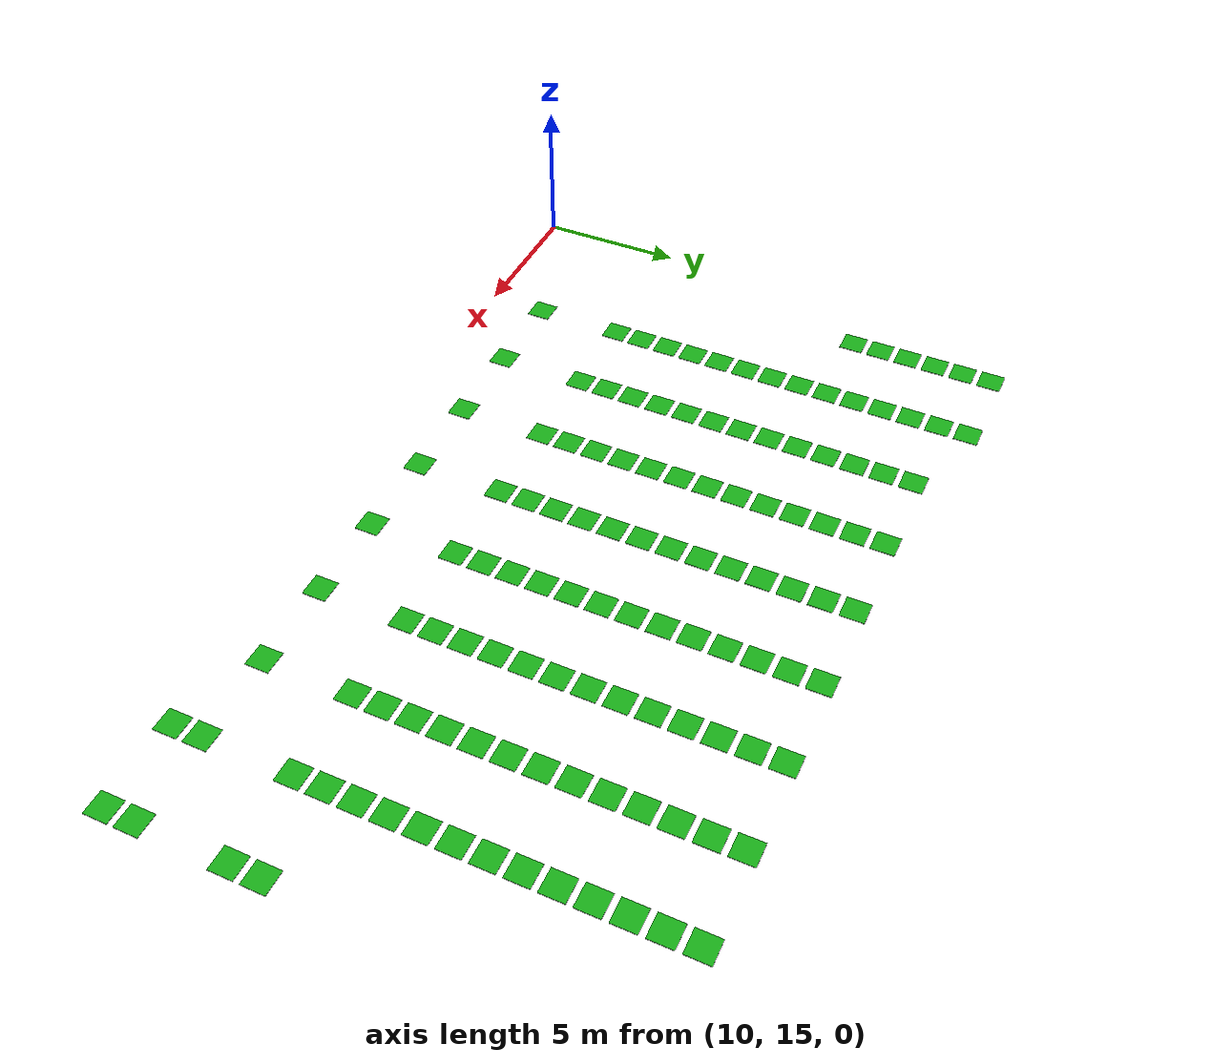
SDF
<sdf version="1.10">
 <world name="my_map">
  <model name="shelf_1504">
   <static>true</static>
   <pose>12.0
        33.0
        0.02
        0 0 0</pose>
   <link name="link">
    <visual name="visual">
     <geometry><box><size>0.8
                0.8
                0.02</size></box></geometry>
     <material><ambient>0.10 0.70 0.10 1</ambient><diffuse>0.10 0.70 0.10 1</diffuse></material>
    </visual>
   </link>
  </model>
  <model name="shelf_1505">
   <static>true</static>
   <pose>15.0
        33.0
        0.02
        0 0 0</pose>
   <link name="link">
    <visual name="visual">
     <geometry><box><size>0.8
                0.8
                0.02</size></box></geometry>
     <material><ambient>0.10 0.70 0.10 1</ambient><diffuse>0.10 0.70 0.10 1</diffuse></material>
    </visual>
   </link>
  </model>
  <model name="shelf_1529">
   <static>true</static>
   <pose>12.0
        32.0
        0.02
        0 0 0</pose>
   <link name="link">
    <visual name="visual">
     <geometry><box><size>0.8
                0.8
                0.02</size></box></geometry>
     <material><ambient>0.10 0.70 0.10 1</ambient><diffuse>0.10 0.70 0.10 1</diffuse></material>
    </visual>
   </link>
  </model>
  <model name="shelf_1530">
   <static>true</static>
   <pose>15.0
        32.0
        0.02
        0 0 0</pose>
   <link name="link">
    <visual name="visual">
     <geometry><box><size>0.8
                0.8
                0.02</size></box></geometry>
     <material><ambient>0.10 0.70 0.10 1</ambient><diffuse>0.10 0.70 0.10 1</diffuse></material>
    </visual>
   </link>
  </model>
  <model name="shelf_1531">
   <static>true</static>
   <pose>18.0
        32.0
        0.02
        0 0 0</pose>
   <link name="link">
    <visual name="visual">
     <geometry><box><size>0.8
                0.8
                0.02</size></box></geometry>
     <material><ambient>0.10 0.70 0.10 1</ambient><diffuse>0.10 0.70 0.10 1</diffuse></material>
    </visual>
   </link>
  </model>
  <model name="shelf_1532">
   <static>true</static>
   <pose>21.0
        32.0
        0.02
        0 0 0</pose>
   <link name="link">
    <visual name="visual">
     <geometry><box><size>0.8
                0.8
                0.02</size></box></geometry>
     <material><ambient>0.10 0.70 0.10 1</ambient><diffuse>0.10 0.70 0.10 1</diffuse></material>
    </visual>
   </link>
  </model>
  <model name="shelf_1533">
   <static>true</static>
   <pose>24.0
        32.0
        0.02
        0 0 0</pose>
   <link name="link">
    <visual name="visual">
     <geometry><box><size>0.8
                0.8
                0.02</size></box></geometry>
     <material><ambient>0.10 0.70 0.10 1</ambient><diffuse>0.10 0.70 0.10 1</diffuse></material>
    </visual>
   </link>
  </model>
  <model name="shelf_1534">
   <static>true</static>
   <pose>27.0
        32.0
        0.02
        0 0 0</pose>
   <link name="link">
    <visual name="visual">
     <geometry><box><size>0.8
                0.8
                0.02</size></box></geometry>
     <material><ambient>0.10 0.70 0.10 1</ambient><diffuse>0.10 0.70 0.10 1</diffuse></material>
    </visual>
   </link>
  </model>
  <model name="shelf_1535">
   <static>true</static>
   <pose>30.0
        32.0
        0.02
        0 0 0</pose>
   <link name="link">
    <visual name="visual">
     <geometry><box><size>0.8
                0.8
                0.02</size></box></geometry>
     <material><ambient>0.10 0.70 0.10 1</ambient><diffuse>0.10 0.70 0.10 1</diffuse></material>
    </visual>
   </link>
  </model>
  <model name="shelf_1536">
   <static>true</static>
   <pose>33.0
        32.0
        0.02
        0 0 0</pose>
   <link name="link">
    <visual name="visual">
     <geometry><box><size>0.8
                0.8
                0.02</size></box></geometry>
     <material><ambient>0.10 0.70 0.10 1</ambient><diffuse>0.10 0.70 0.10 1</diffuse></material>
    </visual>
   </link>
  </model>
  <model name="shelf_1537">
   <static>true</static>
   <pose>36.0
        32.0
        0.02
        0 0 0</pose>
   <link name="link">
    <visual name="visual">
     <geometry><box><size>0.8
                0.8
                0.02</size></box></geometry>
     <material><ambient>0.10 0.70 0.10 1</ambient><diffuse>0.10 0.70 0.10 1</diffuse></material>
    </visual>
   </link>
  </model>
  <model name="shelf_1554">
   <static>true</static>
   <pose>12.0
        31.0
        0.02
        0 0 0</pose>
   <link name="link">
    <visual name="visual">
     <geometry><box><size>0.8
                0.8
                0.02</size></box></geometry>
     <material><ambient>0.10 0.70 0.10 1</ambient><diffuse>0.10 0.70 0.10 1</diffuse></material>
    </visual>
   </link>
  </model>
  <model name="shelf_1555">
   <static>true</static>
   <pose>15.0
        31.0
        0.02
        0 0 0</pose>
   <link name="link">
    <visual name="visual">
     <geometry><box><size>0.8
                0.8
                0.02</size></box></geometry>
     <material><ambient>0.10 0.70 0.10 1</ambient><diffuse>0.10 0.70 0.10 1</diffuse></material>
    </visual>
   </link>
  </model>
  <model name="shelf_1556">
   <static>true</static>
   <pose>18.0
        31.0
        0.02
        0 0 0</pose>
   <link name="link">
    <visual name="visual">
     <geometry><box><size>0.8
                0.8
                0.02</size></box></geometry>
     <material><ambient>0.10 0.70 0.10 1</ambient><diffuse>0.10 0.70 0.10 1</diffuse></material>
    </visual>
   </link>
  </model>
  <model name="shelf_1557">
   <static>true</static>
   <pose>21.0
        31.0
        0.02
        0 0 0</pose>
   <link name="link">
    <visual name="visual">
     <geometry><box><size>0.8
                0.8
                0.02</size></box></geometry>
     <material><ambient>0.10 0.70 0.10 1</ambient><diffuse>0.10 0.70 0.10 1</diffuse></material>
    </visual>
   </link>
  </model>
  <model name="shelf_1558">
   <static>true</static>
   <pose>24.0
        31.0
        0.02
        0 0 0</pose>
   <link name="link">
    <visual name="visual">
     <geometry><box><size>0.8
                0.8
                0.02</size></box></geometry>
     <material><ambient>0.10 0.70 0.10 1</ambient><diffuse>0.10 0.70 0.10 1</diffuse></material>
    </visual>
   </link>
  </model>
  <model name="shelf_1559">
   <static>true</static>
   <pose>27.0
        31.0
        0.02
        0 0 0</pose>
   <link name="link">
    <visual name="visual">
     <geometry><box><size>0.8
                0.8
                0.02</size></box></geometry>
     <material><ambient>0.10 0.70 0.10 1</ambient><diffuse>0.10 0.70 0.10 1</diffuse></material>
    </visual>
   </link>
  </model>
  <model name="shelf_1560">
   <static>true</static>
   <pose>30.0
        31.0
        0.02
        0 0 0</pose>
   <link name="link">
    <visual name="visual">
     <geometry><box><size>0.8
                0.8
                0.02</size></box></geometry>
     <material><ambient>0.10 0.70 0.10 1</ambient><diffuse>0.10 0.70 0.10 1</diffuse></material>
    </visual>
   </link>
  </model>
  <model name="shelf_1561">
   <static>true</static>
   <pose>33.0
        31.0
        0.02
        0 0 0</pose>
   <link name="link">
    <visual name="visual">
     <geometry><box><size>0.8
                0.8
                0.02</size></box></geometry>
     <material><ambient>0.10 0.70 0.10 1</ambient><diffuse>0.10 0.70 0.10 1</diffuse></material>
    </visual>
   </link>
  </model>
  <model name="shelf_1562">
   <static>true</static>
   <pose>36.0
        31.0
        0.02
        0 0 0</pose>
   <link name="link">
    <visual name="visual">
     <geometry><box><size>0.8
                0.8
                0.02</size></box></geometry>
     <material><ambient>0.10 0.70 0.10 1</ambient><diffuse>0.10 0.70 0.10 1</diffuse></material>
    </visual>
   </link>
  </model>
  <model name="shelf_1579">
   <static>true</static>
   <pose>12.0
        30.0
        0.02
        0 0 0</pose>
   <link name="link">
    <visual name="visual">
     <geometry><box><size>0.8
                0.8
                0.02</size></box></geometry>
     <material><ambient>0.10 0.70 0.10 1</ambient><diffuse>0.10 0.70 0.10 1</diffuse></material>
    </visual>
   </link>
  </model>
  <model name="shelf_1580">
   <static>true</static>
   <pose>15.0
        30.0
        0.02
        0 0 0</pose>
   <link name="link">
    <visual name="visual">
     <geometry><box><size>0.8
                0.8
                0.02</size></box></geometry>
     <material><ambient>0.10 0.70 0.10 1</ambient><diffuse>0.10 0.70 0.10 1</diffuse></material>
    </visual>
   </link>
  </model>
  <model name="shelf_1581">
   <static>true</static>
   <pose>18.0
        30.0
        0.02
        0 0 0</pose>
   <link name="link">
    <visual name="visual">
     <geometry><box><size>0.8
                0.8
                0.02</size></box></geometry>
     <material><ambient>0.10 0.70 0.10 1</ambient><diffuse>0.10 0.70 0.10 1</diffuse></material>
    </visual>
   </link>
  </model>
  <model name="shelf_1582">
   <static>true</static>
   <pose>21.0
        30.0
        0.02
        0 0 0</pose>
   <link name="link">
    <visual name="visual">
     <geometry><box><size>0.8
                0.8
                0.02</size></box></geometry>
     <material><ambient>0.10 0.70 0.10 1</ambient><diffuse>0.10 0.70 0.10 1</diffuse></material>
    </visual>
   </link>
  </model>
  <model name="shelf_1583">
   <static>true</static>
   <pose>24.0
        30.0
        0.02
        0 0 0</pose>
   <link name="link">
    <visual name="visual">
     <geometry><box><size>0.8
                0.8
                0.02</size></box></geometry>
     <material><ambient>0.10 0.70 0.10 1</ambient><diffuse>0.10 0.70 0.10 1</diffuse></material>
    </visual>
   </link>
  </model>
  <model name="shelf_1584">
   <static>true</static>
   <pose>27.0
        30.0
        0.02
        0 0 0</pose>
   <link name="link">
    <visual name="visual">
     <geometry><box><size>0.8
                0.8
                0.02</size></box></geometry>
     <material><ambient>0.10 0.70 0.10 1</ambient><diffuse>0.10 0.70 0.10 1</diffuse></material>
    </visual>
   </link>
  </model>
  <model name="shelf_1585">
   <static>true</static>
   <pose>30.0
        30.0
        0.02
        0 0 0</pose>
   <link name="link">
    <visual name="visual">
     <geometry><box><size>0.8
                0.8
                0.02</size></box></geometry>
     <material><ambient>0.10 0.70 0.10 1</ambient><diffuse>0.10 0.70 0.10 1</diffuse></material>
    </visual>
   </link>
  </model>
  <model name="shelf_1586">
   <static>true</static>
   <pose>33.0
        30.0
        0.02
        0 0 0</pose>
   <link name="link">
    <visual name="visual">
     <geometry><box><size>0.8
                0.8
                0.02</size></box></geometry>
     <material><ambient>0.10 0.70 0.10 1</ambient><diffuse>0.10 0.70 0.10 1</diffuse></material>
    </visual>
   </link>
  </model>
  <model name="shelf_1587">
   <static>true</static>
   <pose>36.0
        30.0
        0.02
        0 0 0</pose>
   <link name="link">
    <visual name="visual">
     <geometry><box><size>0.8
                0.8
                0.02</size></box></geometry>
     <material><ambient>0.10 0.70 0.10 1</ambient><diffuse>0.10 0.70 0.10 1</diffuse></material>
    </visual>
   </link>
  </model>
  <model name="shelf_1604">
   <static>true</static>
   <pose>12.0
        29.0
        0.02
        0 0 0</pose>
   <link name="link">
    <visual name="visual">
     <geometry><box><size>0.8
                0.8
                0.02</size></box></geometry>
     <material><ambient>0.10 0.70 0.10 1</ambient><diffuse>0.10 0.70 0.10 1</diffuse></material>
    </visual>
   </link>
  </model>
  <model name="shelf_1605">
   <static>true</static>
   <pose>15.0
        29.0
        0.02
        0 0 0</pose>
   <link name="link">
    <visual name="visual">
     <geometry><box><size>0.8
                0.8
                0.02</size></box></geometry>
     <material><ambient>0.10 0.70 0.10 1</ambient><diffuse>0.10 0.70 0.10 1</diffuse></material>
    </visual>
   </link>
  </model>
  <model name="shelf_1606">
   <static>true</static>
   <pose>18.0
        29.0
        0.02
        0 0 0</pose>
   <link name="link">
    <visual name="visual">
     <geometry><box><size>0.8
                0.8
                0.02</size></box></geometry>
     <material><ambient>0.10 0.70 0.10 1</ambient><diffuse>0.10 0.70 0.10 1</diffuse></material>
    </visual>
   </link>
  </model>
  <model name="shelf_1607">
   <static>true</static>
   <pose>21.0
        29.0
        0.02
        0 0 0</pose>
   <link name="link">
    <visual name="visual">
     <geometry><box><size>0.8
                0.8
                0.02</size></box></geometry>
     <material><ambient>0.10 0.70 0.10 1</ambient><diffuse>0.10 0.70 0.10 1</diffuse></material>
    </visual>
   </link>
  </model>
  <model name="shelf_1608">
   <static>true</static>
   <pose>24.0
        29.0
        0.02
        0 0 0</pose>
   <link name="link">
    <visual name="visual">
     <geometry><box><size>0.8
                0.8
                0.02</size></box></geometry>
     <material><ambient>0.10 0.70 0.10 1</ambient><diffuse>0.10 0.70 0.10 1</diffuse></material>
    </visual>
   </link>
  </model>
  <model name="shelf_1609">
   <static>true</static>
   <pose>27.0
        29.0
        0.02
        0 0 0</pose>
   <link name="link">
    <visual name="visual">
     <geometry><box><size>0.8
                0.8
                0.02</size></box></geometry>
     <material><ambient>0.10 0.70 0.10 1</ambient><diffuse>0.10 0.70 0.10 1</diffuse></material>
    </visual>
   </link>
  </model>
  <model name="shelf_1610">
   <static>true</static>
   <pose>30.0
        29.0
        0.02
        0 0 0</pose>
   <link name="link">
    <visual name="visual">
     <geometry><box><size>0.8
                0.8
                0.02</size></box></geometry>
     <material><ambient>0.10 0.70 0.10 1</ambient><diffuse>0.10 0.70 0.10 1</diffuse></material>
    </visual>
   </link>
  </model>
  <model name="shelf_1611">
   <static>true</static>
   <pose>33.0
        29.0
        0.02
        0 0 0</pose>
   <link name="link">
    <visual name="visual">
     <geometry><box><size>0.8
                0.8
                0.02</size></box></geometry>
     <material><ambient>0.10 0.70 0.10 1</ambient><diffuse>0.10 0.70 0.10 1</diffuse></material>
    </visual>
   </link>
  </model>
  <model name="shelf_1612">
   <static>true</static>
   <pose>36.0
        29.0
        0.02
        0 0 0</pose>
   <link name="link">
    <visual name="visual">
     <geometry><box><size>0.8
                0.8
                0.02</size></box></geometry>
     <material><ambient>0.10 0.70 0.10 1</ambient><diffuse>0.10 0.70 0.10 1</diffuse></material>
    </visual>
   </link>
  </model>
  <model name="shelf_1629">
   <static>true</static>
   <pose>12.0
        28.0
        0.02
        0 0 0</pose>
   <link name="link">
    <visual name="visual">
     <geometry><box><size>0.8
                0.8
                0.02</size></box></geometry>
     <material><ambient>0.10 0.70 0.10 1</ambient><diffuse>0.10 0.70 0.10 1</diffuse></material>
    </visual>
   </link>
  </model>
  <model name="shelf_1630">
   <static>true</static>
   <pose>15.0
        28.0
        0.02
        0 0 0</pose>
   <link name="link">
    <visual name="visual">
     <geometry><box><size>0.8
                0.8
                0.02</size></box></geometry>
     <material><ambient>0.10 0.70 0.10 1</ambient><diffuse>0.10 0.70 0.10 1</diffuse></material>
    </visual>
   </link>
  </model>
  <model name="shelf_1631">
   <static>true</static>
   <pose>18.0
        28.0
        0.02
        0 0 0</pose>
   <link name="link">
    <visual name="visual">
     <geometry><box><size>0.8
                0.8
                0.02</size></box></geometry>
     <material><ambient>0.10 0.70 0.10 1</ambient><diffuse>0.10 0.70 0.10 1</diffuse></material>
    </visual>
   </link>
  </model>
  <model name="shelf_1632">
   <static>true</static>
   <pose>21.0
        28.0
        0.02
        0 0 0</pose>
   <link name="link">
    <visual name="visual">
     <geometry><box><size>0.8
                0.8
                0.02</size></box></geometry>
     <material><ambient>0.10 0.70 0.10 1</ambient><diffuse>0.10 0.70 0.10 1</diffuse></material>
    </visual>
   </link>
  </model>
  <model name="shelf_1633">
   <static>true</static>
   <pose>24.0
        28.0
        0.02
        0 0 0</pose>
   <link name="link">
    <visual name="visual">
     <geometry><box><size>0.8
                0.8
                0.02</size></box></geometry>
     <material><ambient>0.10 0.70 0.10 1</ambient><diffuse>0.10 0.70 0.10 1</diffuse></material>
    </visual>
   </link>
  </model>
  <model name="shelf_1634">
   <static>true</static>
   <pose>27.0
        28.0
        0.02
        0 0 0</pose>
   <link name="link">
    <visual name="visual">
     <geometry><box><size>0.8
                0.8
                0.02</size></box></geometry>
     <material><ambient>0.10 0.70 0.10 1</ambient><diffuse>0.10 0.70 0.10 1</diffuse></material>
    </visual>
   </link>
  </model>
  <model name="shelf_1635">
   <static>true</static>
   <pose>30.0
        28.0
        0.02
        0 0 0</pose>
   <link name="link">
    <visual name="visual">
     <geometry><box><size>0.8
                0.8
                0.02</size></box></geometry>
     <material><ambient>0.10 0.70 0.10 1</ambient><diffuse>0.10 0.70 0.10 1</diffuse></material>
    </visual>
   </link>
  </model>
  <model name="shelf_1636">
   <static>true</static>
   <pose>33.0
        28.0
        0.02
        0 0 0</pose>
   <link name="link">
    <visual name="visual">
     <geometry><box><size>0.8
                0.8
                0.02</size></box></geometry>
     <material><ambient>0.10 0.70 0.10 1</ambient><diffuse>0.10 0.70 0.10 1</diffuse></material>
    </visual>
   </link>
  </model>
  <model name="shelf_1637">
   <static>true</static>
   <pose>36.0
        28.0
        0.02
        0 0 0</pose>
   <link name="link">
    <visual name="visual">
     <geometry><box><size>0.8
                0.8
                0.02</size></box></geometry>
     <material><ambient>0.10 0.70 0.10 1</ambient><diffuse>0.10 0.70 0.10 1</diffuse></material>
    </visual>
   </link>
  </model>
  <model name="shelf_1655">
   <static>true</static>
   <pose>15.0
        27.0
        0.02
        0 0 0</pose>
   <link name="link">
    <visual name="visual">
     <geometry><box><size>0.8
                0.8
                0.02</size></box></geometry>
     <material><ambient>0.10 0.70 0.10 1</ambient><diffuse>0.10 0.70 0.10 1</diffuse></material>
    </visual>
   </link>
  </model>
  <model name="shelf_1656">
   <static>true</static>
   <pose>18.0
        27.0
        0.02
        0 0 0</pose>
   <link name="link">
    <visual name="visual">
     <geometry><box><size>0.8
                0.8
                0.02</size></box></geometry>
     <material><ambient>0.10 0.70 0.10 1</ambient><diffuse>0.10 0.70 0.10 1</diffuse></material>
    </visual>
   </link>
  </model>
  <model name="shelf_1657">
   <static>true</static>
   <pose>21.0
        27.0
        0.02
        0 0 0</pose>
   <link name="link">
    <visual name="visual">
     <geometry><box><size>0.8
                0.8
                0.02</size></box></geometry>
     <material><ambient>0.10 0.70 0.10 1</ambient><diffuse>0.10 0.70 0.10 1</diffuse></material>
    </visual>
   </link>
  </model>
  <model name="shelf_1658">
   <static>true</static>
   <pose>24.0
        27.0
        0.02
        0 0 0</pose>
   <link name="link">
    <visual name="visual">
     <geometry><box><size>0.8
                0.8
                0.02</size></box></geometry>
     <material><ambient>0.10 0.70 0.10 1</ambient><diffuse>0.10 0.70 0.10 1</diffuse></material>
    </visual>
   </link>
  </model>
  <model name="shelf_1659">
   <static>true</static>
   <pose>27.0
        27.0
        0.02
        0 0 0</pose>
   <link name="link">
    <visual name="visual">
     <geometry><box><size>0.8
                0.8
                0.02</size></box></geometry>
     <material><ambient>0.10 0.70 0.10 1</ambient><diffuse>0.10 0.70 0.10 1</diffuse></material>
    </visual>
   </link>
  </model>
  <model name="shelf_1660">
   <static>true</static>
   <pose>30.0
        27.0
        0.02
        0 0 0</pose>
   <link name="link">
    <visual name="visual">
     <geometry><box><size>0.8
                0.8
                0.02</size></box></geometry>
     <material><ambient>0.10 0.70 0.10 1</ambient><diffuse>0.10 0.70 0.10 1</diffuse></material>
    </visual>
   </link>
  </model>
  <model name="shelf_1661">
   <static>true</static>
   <pose>33.0
        27.0
        0.02
        0 0 0</pose>
   <link name="link">
    <visual name="visual">
     <geometry><box><size>0.8
                0.8
                0.02</size></box></geometry>
     <material><ambient>0.10 0.70 0.10 1</ambient><diffuse>0.10 0.70 0.10 1</diffuse></material>
    </visual>
   </link>
  </model>
  <model name="shelf_1662">
   <static>true</static>
   <pose>36.0
        27.0
        0.02
        0 0 0</pose>
   <link name="link">
    <visual name="visual">
     <geometry><box><size>0.8
                0.8
                0.02</size></box></geometry>
     <material><ambient>0.10 0.70 0.10 1</ambient><diffuse>0.10 0.70 0.10 1</diffuse></material>
    </visual>
   </link>
  </model>
  <model name="shelf_1680">
   <static>true</static>
   <pose>15.0
        26.0
        0.02
        0 0 0</pose>
   <link name="link">
    <visual name="visual">
     <geometry><box><size>0.8
                0.8
                0.02</size></box></geometry>
     <material><ambient>0.10 0.70 0.10 1</ambient><diffuse>0.10 0.70 0.10 1</diffuse></material>
    </visual>
   </link>
  </model>
  <model name="shelf_1681">
   <static>true</static>
   <pose>18.0
        26.0
        0.02
        0 0 0</pose>
   <link name="link">
    <visual name="visual">
     <geometry><box><size>0.8
                0.8
                0.02</size></box></geometry>
     <material><ambient>0.10 0.70 0.10 1</ambient><diffuse>0.10 0.70 0.10 1</diffuse></material>
    </visual>
   </link>
  </model>
  <model name="shelf_1682">
   <static>true</static>
   <pose>21.0
        26.0
        0.02
        0 0 0</pose>
   <link name="link">
    <visual name="visual">
     <geometry><box><size>0.8
                0.8
                0.02</size></box></geometry>
     <material><ambient>0.10 0.70 0.10 1</ambient><diffuse>0.10 0.70 0.10 1</diffuse></material>
    </visual>
   </link>
  </model>
  <model name="shelf_1683">
   <static>true</static>
   <pose>24.0
        26.0
        0.02
        0 0 0</pose>
   <link name="link">
    <visual name="visual">
     <geometry><box><size>0.8
                0.8
                0.02</size></box></geometry>
     <material><ambient>0.10 0.70 0.10 1</ambient><diffuse>0.10 0.70 0.10 1</diffuse></material>
    </visual>
   </link>
  </model>
  <model name="shelf_1684">
   <static>true</static>
   <pose>27.0
        26.0
        0.02
        0 0 0</pose>
   <link name="link">
    <visual name="visual">
     <geometry><box><size>0.8
                0.8
                0.02</size></box></geometry>
     <material><ambient>0.10 0.70 0.10 1</ambient><diffuse>0.10 0.70 0.10 1</diffuse></material>
    </visual>
   </link>
  </model>
  <model name="shelf_1685">
   <static>true</static>
   <pose>30.0
        26.0
        0.02
        0 0 0</pose>
   <link name="link">
    <visual name="visual">
     <geometry><box><size>0.8
                0.8
                0.02</size></box></geometry>
     <material><ambient>0.10 0.70 0.10 1</ambient><diffuse>0.10 0.70 0.10 1</diffuse></material>
    </visual>
   </link>
  </model>
  <model name="shelf_1686">
   <static>true</static>
   <pose>33.0
        26.0
        0.02
        0 0 0</pose>
   <link name="link">
    <visual name="visual">
     <geometry><box><size>0.8
                0.8
                0.02</size></box></geometry>
     <material><ambient>0.10 0.70 0.10 1</ambient><diffuse>0.10 0.70 0.10 1</diffuse></material>
    </visual>
   </link>
  </model>
  <model name="shelf_1687">
   <static>true</static>
   <pose>36.0
        26.0
        0.02
        0 0 0</pose>
   <link name="link">
    <visual name="visual">
     <geometry><box><size>0.8
                0.8
                0.02</size></box></geometry>
     <material><ambient>0.10 0.70 0.10 1</ambient><diffuse>0.10 0.70 0.10 1</diffuse></material>
    </visual>
   </link>
  </model>
  <model name="shelf_1705">
   <static>true</static>
   <pose>15.0
        25.0
        0.02
        0 0 0</pose>
   <link name="link">
    <visual name="visual">
     <geometry><box><size>0.8
                0.8
                0.02</size></box></geometry>
     <material><ambient>0.10 0.70 0.10 1</ambient><diffuse>0.10 0.70 0.10 1</diffuse></material>
    </visual>
   </link>
  </model>
  <model name="shelf_1706">
   <static>true</static>
   <pose>18.0
        25.0
        0.02
        0 0 0</pose>
   <link name="link">
    <visual name="visual">
     <geometry><box><size>0.8
                0.8
                0.02</size></box></geometry>
     <material><ambient>0.10 0.70 0.10 1</ambient><diffuse>0.10 0.70 0.10 1</diffuse></material>
    </visual>
   </link>
  </model>
  <model name="shelf_1707">
   <static>true</static>
   <pose>21.0
        25.0
        0.02
        0 0 0</pose>
   <link name="link">
    <visual name="visual">
     <geometry><box><size>0.8
                0.8
                0.02</size></box></geometry>
     <material><ambient>0.10 0.70 0.10 1</ambient><diffuse>0.10 0.70 0.10 1</diffuse></material>
    </visual>
   </link>
  </model>
  <model name="shelf_1708">
   <static>true</static>
   <pose>24.0
        25.0
        0.02
        0 0 0</pose>
   <link name="link">
    <visual name="visual">
     <geometry><box><size>0.8
                0.8
                0.02</size></box></geometry>
     <material><ambient>0.10 0.70 0.10 1</ambient><diffuse>0.10 0.70 0.10 1</diffuse></material>
    </visual>
   </link>
  </model>
  <model name="shelf_1709">
   <static>true</static>
   <pose>27.0
        25.0
        0.02
        0 0 0</pose>
   <link name="link">
    <visual name="visual">
     <geometry><box><size>0.8
                0.8
                0.02</size></box></geometry>
     <material><ambient>0.10 0.70 0.10 1</ambient><diffuse>0.10 0.70 0.10 1</diffuse></material>
    </visual>
   </link>
  </model>
  <model name="shelf_1710">
   <static>true</static>
   <pose>30.0
        25.0
        0.02
        0 0 0</pose>
   <link name="link">
    <visual name="visual">
     <geometry><box><size>0.8
                0.8
                0.02</size></box></geometry>
     <material><ambient>0.10 0.70 0.10 1</ambient><diffuse>0.10 0.70 0.10 1</diffuse></material>
    </visual>
   </link>
  </model>
  <model name="shelf_1711">
   <static>true</static>
   <pose>33.0
        25.0
        0.02
        0 0 0</pose>
   <link name="link">
    <visual name="visual">
     <geometry><box><size>0.8
                0.8
                0.02</size></box></geometry>
     <material><ambient>0.10 0.70 0.10 1</ambient><diffuse>0.10 0.70 0.10 1</diffuse></material>
    </visual>
   </link>
  </model>
  <model name="shelf_1712">
   <static>true</static>
   <pose>36.0
        25.0
        0.02
        0 0 0</pose>
   <link name="link">
    <visual name="visual">
     <geometry><box><size>0.8
                0.8
                0.02</size></box></geometry>
     <material><ambient>0.10 0.70 0.10 1</ambient><diffuse>0.10 0.70 0.10 1</diffuse></material>
    </visual>
   </link>
  </model>
  <model name="shelf_1730">
   <static>true</static>
   <pose>15.0
        24.0
        0.02
        0 0 0</pose>
   <link name="link">
    <visual name="visual">
     <geometry><box><size>0.8
                0.8
                0.02</size></box></geometry>
     <material><ambient>0.10 0.70 0.10 1</ambient><diffuse>0.10 0.70 0.10 1</diffuse></material>
    </visual>
   </link>
  </model>
  <model name="shelf_1731">
   <static>true</static>
   <pose>18.0
        24.0
        0.02
        0 0 0</pose>
   <link name="link">
    <visual name="visual">
     <geometry><box><size>0.8
                0.8
                0.02</size></box></geometry>
     <material><ambient>0.10 0.70 0.10 1</ambient><diffuse>0.10 0.70 0.10 1</diffuse></material>
    </visual>
   </link>
  </model>
  <model name="shelf_1732">
   <static>true</static>
   <pose>21.0
        24.0
        0.02
        0 0 0</pose>
   <link name="link">
    <visual name="visual">
     <geometry><box><size>0.8
                0.8
                0.02</size></box></geometry>
     <material><ambient>0.10 0.70 0.10 1</ambient><diffuse>0.10 0.70 0.10 1</diffuse></material>
    </visual>
   </link>
  </model>
  <model name="shelf_1733">
   <static>true</static>
   <pose>24.0
        24.0
        0.02
        0 0 0</pose>
   <link name="link">
    <visual name="visual">
     <geometry><box><size>0.8
                0.8
                0.02</size></box></geometry>
     <material><ambient>0.10 0.70 0.10 1</ambient><diffuse>0.10 0.70 0.10 1</diffuse></material>
    </visual>
   </link>
  </model>
  <model name="shelf_1734">
   <static>true</static>
   <pose>27.0
        24.0
        0.02
        0 0 0</pose>
   <link name="link">
    <visual name="visual">
     <geometry><box><size>0.8
                0.8
                0.02</size></box></geometry>
     <material><ambient>0.10 0.70 0.10 1</ambient><diffuse>0.10 0.70 0.10 1</diffuse></material>
    </visual>
   </link>
  </model>
  <model name="shelf_1735">
   <static>true</static>
   <pose>30.0
        24.0
        0.02
        0 0 0</pose>
   <link name="link">
    <visual name="visual">
     <geometry><box><size>0.8
                0.8
                0.02</size></box></geometry>
     <material><ambient>0.10 0.70 0.10 1</ambient><diffuse>0.10 0.70 0.10 1</diffuse></material>
    </visual>
   </link>
  </model>
  <model name="shelf_1736">
   <static>true</static>
   <pose>33.0
        24.0
        0.02
        0 0 0</pose>
   <link name="link">
    <visual name="visual">
     <geometry><box><size>0.8
                0.8
                0.02</size></box></geometry>
     <material><ambient>0.10 0.70 0.10 1</ambient><diffuse>0.10 0.70 0.10 1</diffuse></material>
    </visual>
   </link>
  </model>
  <model name="shelf_1737">
   <static>true</static>
   <pose>36.0
        24.0
        0.02
        0 0 0</pose>
   <link name="link">
    <visual name="visual">
     <geometry><box><size>0.8
                0.8
                0.02</size></box></geometry>
     <material><ambient>0.10 0.70 0.10 1</ambient><diffuse>0.10 0.70 0.10 1</diffuse></material>
    </visual>
   </link>
  </model>
  <model name="shelf_1755">
   <static>true</static>
   <pose>15.0
        23.0
        0.02
        0 0 0</pose>
   <link name="link">
    <visual name="visual">
     <geometry><box><size>0.8
                0.8
                0.02</size></box></geometry>
     <material><ambient>0.10 0.70 0.10 1</ambient><diffuse>0.10 0.70 0.10 1</diffuse></material>
    </visual>
   </link>
  </model>
  <model name="shelf_1756">
   <static>true</static>
   <pose>18.0
        23.0
        0.02
        0 0 0</pose>
   <link name="link">
    <visual name="visual">
     <geometry><box><size>0.8
                0.8
                0.02</size></box></geometry>
     <material><ambient>0.10 0.70 0.10 1</ambient><diffuse>0.10 0.70 0.10 1</diffuse></material>
    </visual>
   </link>
  </model>
  <model name="shelf_1757">
   <static>true</static>
   <pose>21.0
        23.0
        0.02
        0 0 0</pose>
   <link name="link">
    <visual name="visual">
     <geometry><box><size>0.8
                0.8
                0.02</size></box></geometry>
     <material><ambient>0.10 0.70 0.10 1</ambient><diffuse>0.10 0.70 0.10 1</diffuse></material>
    </visual>
   </link>
  </model>
  <model name="shelf_1758">
   <static>true</static>
   <pose>24.0
        23.0
        0.02
        0 0 0</pose>
   <link name="link">
    <visual name="visual">
     <geometry><box><size>0.8
                0.8
                0.02</size></box></geometry>
     <material><ambient>0.10 0.70 0.10 1</ambient><diffuse>0.10 0.70 0.10 1</diffuse></material>
    </visual>
   </link>
  </model>
  <model name="shelf_1759">
   <static>true</static>
   <pose>27.0
        23.0
        0.02
        0 0 0</pose>
   <link name="link">
    <visual name="visual">
     <geometry><box><size>0.8
                0.8
                0.02</size></box></geometry>
     <material><ambient>0.10 0.70 0.10 1</ambient><diffuse>0.10 0.70 0.10 1</diffuse></material>
    </visual>
   </link>
  </model>
  <model name="shelf_1760">
   <static>true</static>
   <pose>30.0
        23.0
        0.02
        0 0 0</pose>
   <link name="link">
    <visual name="visual">
     <geometry><box><size>0.8
                0.8
                0.02</size></box></geometry>
     <material><ambient>0.10 0.70 0.10 1</ambient><diffuse>0.10 0.70 0.10 1</diffuse></material>
    </visual>
   </link>
  </model>
  <model name="shelf_1761">
   <static>true</static>
   <pose>33.0
        23.0
        0.02
        0 0 0</pose>
   <link name="link">
    <visual name="visual">
     <geometry><box><size>0.8
                0.8
                0.02</size></box></geometry>
     <material><ambient>0.10 0.70 0.10 1</ambient><diffuse>0.10 0.70 0.10 1</diffuse></material>
    </visual>
   </link>
  </model>
  <model name="shelf_1762">
   <static>true</static>
   <pose>36.0
        23.0
        0.02
        0 0 0</pose>
   <link name="link">
    <visual name="visual">
     <geometry><box><size>0.8
                0.8
                0.02</size></box></geometry>
     <material><ambient>0.10 0.70 0.10 1</ambient><diffuse>0.10 0.70 0.10 1</diffuse></material>
    </visual>
   </link>
  </model>
  <model name="shelf_1780">
   <static>true</static>
   <pose>15.0
        22.0
        0.02
        0 0 0</pose>
   <link name="link">
    <visual name="visual">
     <geometry><box><size>0.8
                0.8
                0.02</size></box></geometry>
     <material><ambient>0.10 0.70 0.10 1</ambient><diffuse>0.10 0.70 0.10 1</diffuse></material>
    </visual>
   </link>
  </model>
  <model name="shelf_1781">
   <static>true</static>
   <pose>18.0
        22.0
        0.02
        0 0 0</pose>
   <link name="link">
    <visual name="visual">
     <geometry><box><size>0.8
                0.8
                0.02</size></box></geometry>
     <material><ambient>0.10 0.70 0.10 1</ambient><diffuse>0.10 0.70 0.10 1</diffuse></material>
    </visual>
   </link>
  </model>
  <model name="shelf_1782">
   <static>true</static>
   <pose>21.0
        22.0
        0.02
        0 0 0</pose>
   <link name="link">
    <visual name="visual">
     <geometry><box><size>0.8
                0.8
                0.02</size></box></geometry>
     <material><ambient>0.10 0.70 0.10 1</ambient><diffuse>0.10 0.70 0.10 1</diffuse></material>
    </visual>
   </link>
  </model>
  <model name="shelf_1783">
   <static>true</static>
   <pose>24.0
        22.0
        0.02
        0 0 0</pose>
   <link name="link">
    <visual name="visual">
     <geometry><box><size>0.8
                0.8
                0.02</size></box></geometry>
     <material><ambient>0.10 0.70 0.10 1</ambient><diffuse>0.10 0.70 0.10 1</diffuse></material>
    </visual>
   </link>
  </model>
  <model name="shelf_1784">
   <static>true</static>
   <pose>27.0
        22.0
        0.02
        0 0 0</pose>
   <link name="link">
    <visual name="visual">
     <geometry><box><size>0.8
                0.8
                0.02</size></box></geometry>
     <material><ambient>0.10 0.70 0.10 1</ambient><diffuse>0.10 0.70 0.10 1</diffuse></material>
    </visual>
   </link>
  </model>
  <model name="shelf_1785">
   <static>true</static>
   <pose>30.0
        22.0
        0.02
        0 0 0</pose>
   <link name="link">
    <visual name="visual">
     <geometry><box><size>0.8
                0.8
                0.02</size></box></geometry>
     <material><ambient>0.10 0.70 0.10 1</ambient><diffuse>0.10 0.70 0.10 1</diffuse></material>
    </visual>
   </link>
  </model>
  <model name="shelf_1786">
   <static>true</static>
   <pose>33.0
        22.0
        0.02
        0 0 0</pose>
   <link name="link">
    <visual name="visual">
     <geometry><box><size>0.8
                0.8
                0.02</size></box></geometry>
     <material><ambient>0.10 0.70 0.10 1</ambient><diffuse>0.10 0.70 0.10 1</diffuse></material>
    </visual>
   </link>
  </model>
  <model name="shelf_1787">
   <static>true</static>
   <pose>36.0
        22.0
        0.02
        0 0 0</pose>
   <link name="link">
    <visual name="visual">
     <geometry><box><size>0.8
                0.8
                0.02</size></box></geometry>
     <material><ambient>0.10 0.70 0.10 1</ambient><diffuse>0.10 0.70 0.10 1</diffuse></material>
    </visual>
   </link>
  </model>
  <model name="shelf_1805">
   <static>true</static>
   <pose>15.0
        21.0
        0.02
        0 0 0</pose>
   <link name="link">
    <visual name="visual">
     <geometry><box><size>0.8
                0.8
                0.02</size></box></geometry>
     <material><ambient>0.10 0.70 0.10 1</ambient><diffuse>0.10 0.70 0.10 1</diffuse></material>
    </visual>
   </link>
  </model>
  <model name="shelf_1806">
   <static>true</static>
   <pose>18.0
        21.0
        0.02
        0 0 0</pose>
   <link name="link">
    <visual name="visual">
     <geometry><box><size>0.8
                0.8
                0.02</size></box></geometry>
     <material><ambient>0.10 0.70 0.10 1</ambient><diffuse>0.10 0.70 0.10 1</diffuse></material>
    </visual>
   </link>
  </model>
  <model name="shelf_1807">
   <static>true</static>
   <pose>21.0
        21.0
        0.02
        0 0 0</pose>
   <link name="link">
    <visual name="visual">
     <geometry><box><size>0.8
                0.8
                0.02</size></box></geometry>
     <material><ambient>0.10 0.70 0.10 1</ambient><diffuse>0.10 0.70 0.10 1</diffuse></material>
    </visual>
   </link>
  </model>
  <model name="shelf_1808">
   <static>true</static>
   <pose>24.0
        21.0
        0.02
        0 0 0</pose>
   <link name="link">
    <visual name="visual">
     <geometry><box><size>0.8
                0.8
                0.02</size></box></geometry>
     <material><ambient>0.10 0.70 0.10 1</ambient><diffuse>0.10 0.70 0.10 1</diffuse></material>
    </visual>
   </link>
  </model>
  <model name="shelf_1809">
   <static>true</static>
   <pose>27.0
        21.0
        0.02
        0 0 0</pose>
   <link name="link">
    <visual name="visual">
     <geometry><box><size>0.8
                0.8
                0.02</size></box></geometry>
     <material><ambient>0.10 0.70 0.10 1</ambient><diffuse>0.10 0.70 0.10 1</diffuse></material>
    </visual>
   </link>
  </model>
  <model name="shelf_1810">
   <static>true</static>
   <pose>30.0
        21.0
        0.02
        0 0 0</pose>
   <link name="link">
    <visual name="visual">
     <geometry><box><size>0.8
                0.8
                0.02</size></box></geometry>
     <material><ambient>0.10 0.70 0.10 1</ambient><diffuse>0.10 0.70 0.10 1</diffuse></material>
    </visual>
   </link>
  </model>
  <model name="shelf_1811">
   <static>true</static>
   <pose>33.0
        21.0
        0.02
        0 0 0</pose>
   <link name="link">
    <visual name="visual">
     <geometry><box><size>0.8
                0.8
                0.02</size></box></geometry>
     <material><ambient>0.10 0.70 0.10 1</ambient><diffuse>0.10 0.70 0.10 1</diffuse></material>
    </visual>
   </link>
  </model>
  <model name="shelf_1812">
   <static>true</static>
   <pose>36.0
        21.0
        0.02
        0 0 0</pose>
   <link name="link">
    <visual name="visual">
     <geometry><box><size>0.8
                0.8
                0.02</size></box></geometry>
     <material><ambient>0.10 0.70 0.10 1</ambient><diffuse>0.10 0.70 0.10 1</diffuse></material>
    </visual>
   </link>
  </model>
  <model name="shelf_1813">
   <static>true</static>
   <pose>39.0
        21.0
        0.02
        0 0 0</pose>
   <link name="link">
    <visual name="visual">
     <geometry><box><size>0.8
                0.8
                0.02</size></box></geometry>
     <material><ambient>0.10 0.70 0.10 1</ambient><diffuse>0.10 0.70 0.10 1</diffuse></material>
    </visual>
   </link>
  </model>
  <model name="shelf_1830">
   <static>true</static>
   <pose>15.0
        20.0
        0.02
        0 0 0</pose>
   <link name="link">
    <visual name="visual">
     <geometry><box><size>0.8
                0.8
                0.02</size></box></geometry>
     <material><ambient>0.10 0.70 0.10 1</ambient><diffuse>0.10 0.70 0.10 1</diffuse></material>
    </visual>
   </link>
  </model>
  <model name="shelf_1831">
   <static>true</static>
   <pose>18.0
        20.0
        0.02
        0 0 0</pose>
   <link name="link">
    <visual name="visual">
     <geometry><box><size>0.8
                0.8
                0.02</size></box></geometry>
     <material><ambient>0.10 0.70 0.10 1</ambient><diffuse>0.10 0.70 0.10 1</diffuse></material>
    </visual>
   </link>
  </model>
  <model name="shelf_1832">
   <static>true</static>
   <pose>21.0
        20.0
        0.02
        0 0 0</pose>
   <link name="link">
    <visual name="visual">
     <geometry><box><size>0.8
                0.8
                0.02</size></box></geometry>
     <material><ambient>0.10 0.70 0.10 1</ambient><diffuse>0.10 0.70 0.10 1</diffuse></material>
    </visual>
   </link>
  </model>
  <model name="shelf_1833">
   <static>true</static>
   <pose>24.0
        20.0
        0.02
        0 0 0</pose>
   <link name="link">
    <visual name="visual">
     <geometry><box><size>0.8
                0.8
                0.02</size></box></geometry>
     <material><ambient>0.10 0.70 0.10 1</ambient><diffuse>0.10 0.70 0.10 1</diffuse></material>
    </visual>
   </link>
  </model>
  <model name="shelf_1834">
   <static>true</static>
   <pose>27.0
        20.0
        0.02
        0 0 0</pose>
   <link name="link">
    <visual name="visual">
     <geometry><box><size>0.8
                0.8
                0.02</size></box></geometry>
     <material><ambient>0.10 0.70 0.10 1</ambient><diffuse>0.10 0.70 0.10 1</diffuse></material>
    </visual>
   </link>
  </model>
  <model name="shelf_1835">
   <static>true</static>
   <pose>30.0
        20.0
        0.02
        0 0 0</pose>
   <link name="link">
    <visual name="visual">
     <geometry><box><size>0.8
                0.8
                0.02</size></box></geometry>
     <material><ambient>0.10 0.70 0.10 1</ambient><diffuse>0.10 0.70 0.10 1</diffuse></material>
    </visual>
   </link>
  </model>
  <model name="shelf_1836">
   <static>true</static>
   <pose>33.0
        20.0
        0.02
        0 0 0</pose>
   <link name="link">
    <visual name="visual">
     <geometry><box><size>0.8
                0.8
                0.02</size></box></geometry>
     <material><ambient>0.10 0.70 0.10 1</ambient><diffuse>0.10 0.70 0.10 1</diffuse></material>
    </visual>
   </link>
  </model>
  <model name="shelf_1837">
   <static>true</static>
   <pose>36.0
        20.0
        0.02
        0 0 0</pose>
   <link name="link">
    <visual name="visual">
     <geometry><box><size>0.8
                0.8
                0.02</size></box></geometry>
     <material><ambient>0.10 0.70 0.10 1</ambient><diffuse>0.10 0.70 0.10 1</diffuse></material>
    </visual>
   </link>
  </model>
  <model name="shelf_1838">
   <static>true</static>
   <pose>39.0
        20.0
        0.02
        0 0 0</pose>
   <link name="link">
    <visual name="visual">
     <geometry><box><size>0.8
                0.8
                0.02</size></box></geometry>
     <material><ambient>0.10 0.70 0.10 1</ambient><diffuse>0.10 0.70 0.10 1</diffuse></material>
    </visual>
   </link>
  </model>
  <model name="shelf_1855">
   <static>true</static>
   <pose>15.0
        17.0
        0.02
        0 0 0</pose>
   <link name="link">
    <visual name="visual">
     <geometry><box><size>0.8
                0.8
                0.02</size></box></geometry>
     <material><ambient>0.10 0.70 0.10 1</ambient><diffuse>0.10 0.70 0.10 1</diffuse></material>
    </visual>
   </link>
  </model>
  <model name="shelf_1856">
   <static>true</static>
   <pose>18.0
        17.0
        0.02
        0 0 0</pose>
   <link name="link">
    <visual name="visual">
     <geometry><box><size>0.8
                0.8
                0.02</size></box></geometry>
     <material><ambient>0.10 0.70 0.10 1</ambient><diffuse>0.10 0.70 0.10 1</diffuse></material>
    </visual>
   </link>
  </model>
  <model name="shelf_1857">
   <static>true</static>
   <pose>21.0
        17.0
        0.02
        0 0 0</pose>
   <link name="link">
    <visual name="visual">
     <geometry><box><size>0.8
                0.8
                0.02</size></box></geometry>
     <material><ambient>0.10 0.70 0.10 1</ambient><diffuse>0.10 0.70 0.10 1</diffuse></material>
    </visual>
   </link>
  </model>
  <model name="shelf_1858">
   <static>true</static>
   <pose>24.0
        17.0
        0.02
        0 0 0</pose>
   <link name="link">
    <visual name="visual">
     <geometry><box><size>0.8
                0.8
                0.02</size></box></geometry>
     <material><ambient>0.10 0.70 0.10 1</ambient><diffuse>0.10 0.70 0.10 1</diffuse></material>
    </visual>
   </link>
  </model>
  <model name="shelf_1859">
   <static>true</static>
   <pose>27.0
        17.0
        0.02
        0 0 0</pose>
   <link name="link">
    <visual name="visual">
     <geometry><box><size>0.8
                0.8
                0.02</size></box></geometry>
     <material><ambient>0.10 0.70 0.10 1</ambient><diffuse>0.10 0.70 0.10 1</diffuse></material>
    </visual>
   </link>
  </model>
  <model name="shelf_1860">
   <static>true</static>
   <pose>30.0
        17.0
        0.02
        0 0 0</pose>
   <link name="link">
    <visual name="visual">
     <geometry><box><size>0.8
                0.8
                0.02</size></box></geometry>
     <material><ambient>0.10 0.70 0.10 1</ambient><diffuse>0.10 0.70 0.10 1</diffuse></material>
    </visual>
   </link>
  </model>
  <model name="shelf_1861">
   <static>true</static>
   <pose>33.0
        17.0
        0.02
        0 0 0</pose>
   <link name="link">
    <visual name="visual">
     <geometry><box><size>0.8
                0.8
                0.02</size></box></geometry>
     <material><ambient>0.10 0.70 0.10 1</ambient><diffuse>0.10 0.70 0.10 1</diffuse></material>
    </visual>
   </link>
  </model>
  <model name="shelf_1862">
   <static>true</static>
   <pose>36.0
        17.0
        0.02
        0 0 0</pose>
   <link name="link">
    <visual name="visual">
     <geometry><box><size>0.8
                0.8
                0.02</size></box></geometry>
     <material><ambient>0.10 0.70 0.10 1</ambient><diffuse>0.10 0.70 0.10 1</diffuse></material>
    </visual>
   </link>
  </model>
  <model name="shelf_1863">
   <static>true</static>
   <pose>39.0
        17.0
        0.02
        0 0 0</pose>
   <link name="link">
    <visual name="visual">
     <geometry><box><size>0.8
                0.8
                0.02</size></box></geometry>
     <material><ambient>0.10 0.70 0.10 1</ambient><diffuse>0.10 0.70 0.10 1</diffuse></material>
    </visual>
   </link>
  </model>
  <model name="shelf_1887">
   <static>true</static>
   <pose>36.0
        16.0
        0.02
        0 0 0</pose>
   <link name="link">
    <visual name="visual">
     <geometry><box><size>0.8
                0.8
                0.02</size></box></geometry>
     <material><ambient>0.10 0.70 0.10 1</ambient><diffuse>0.10 0.70 0.10 1</diffuse></material>
    </visual>
   </link>
  </model>
  <model name="shelf_1888">
   <static>true</static>
   <pose>39.0
        16.0
        0.02
        0 0 0</pose>
   <link name="link">
    <visual name="visual">
     <geometry><box><size>0.8
                0.8
                0.02</size></box></geometry>
     <material><ambient>0.10 0.70 0.10 1</ambient><diffuse>0.10 0.70 0.10 1</diffuse></material>
    </visual>
   </link>
  </model>
 </world>
</sdf>
